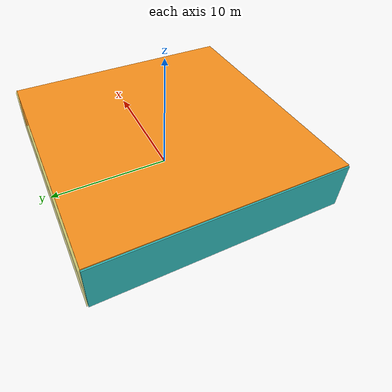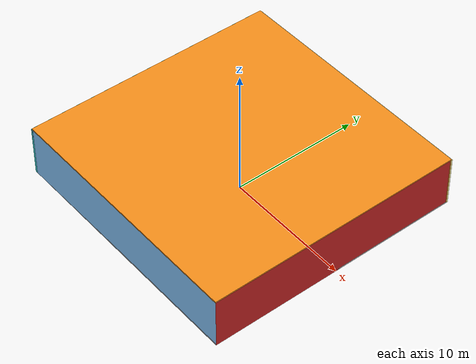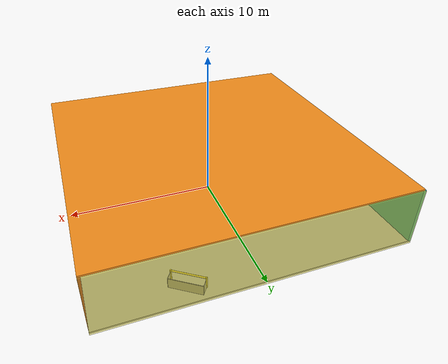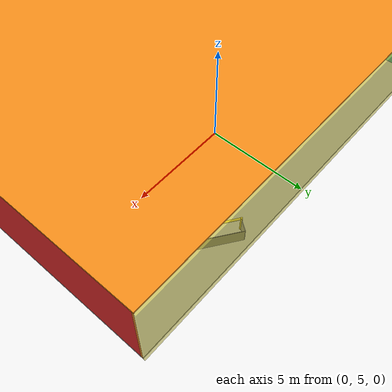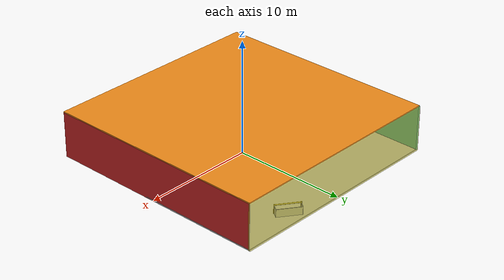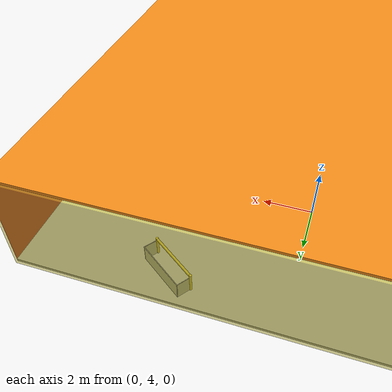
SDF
<sdf version="1.4">
 <world name="default">
  <physics type="ode">
   <max_step_size>0.001</max_step_size>
   <real_time_factor>1</real_time_factor>
   <real_time_update_rate>1000</real_time_update_rate>
   <gravity>0 0 -9.8</gravity>
  </physics>
  <scene><ambient>0.4 0.4 0.4 1</ambient><background>0.7 0.7 0.7 1</background><shadows>1</shadows></scene>
  <model name="Surrounding">
   <static>1</static>
   <link name="Ceiling">
    <collision name="Ceiling_Collision"><geometry><box><size>20 20 0.1</size></box></geometry></collision>
    <visual name="Ceiling_Visual">
     <geometry><box><size>20 20 0.1</size></box></geometry>
     <material>
      <script><uri>file://media/materials/scripts/gazebo.material</uri><name>Gazebo/Orange</name></script>
     </material>
    </visual>
    <pose>0 0 4.05 0 0 0</pose>
   </link>
   <link name="Wall_South">
    <collision name="Wall_South_Collision">
     <geometry><box><size>20 0 4</size></box></geometry>
     <pose>0 0 2 0 -0 0</pose>
    </collision>
    <visual name="Wall_South_Visual">
     <pose>0 0 2 0 -0 0</pose>
     <geometry><box><size>20 0 4</size></box></geometry>
     <material>
      <script><uri>file://media/materials/scripts/gazebo.material</uri><name>Gazebo/SkyBlue</name></script>
     </material>
    </visual>
    <velocity_decay><linear>0</linear><angular>0</angular></velocity_decay>
    <pose>0 -10 0 0 -0 0</pose>
   </link>
   <link name="Wall_East">
    <collision name="Wall_21_Collision">
     <geometry><box><size>20 0 4</size></box></geometry>
     <pose>0 0 2 0 -0 0</pose>
    </collision>
    <visual name="Wall_21_Visual">
     <pose>0 0 2 0 -0 0</pose>
     <geometry><box><size>20 0 4</size></box></geometry>
     <material>
      <script><uri>file://media/materials/scripts/gazebo.material</uri><name>Gazebo/Red</name></script>
     </material>
    </visual>
    <velocity_decay><linear>0</linear><angular>0</angular></velocity_decay>
    <pose>10 0 0 0 -0 1.5708</pose>
   </link>
   <link name="Wall_North">
    <collision name="Wall_22_Collision">
     <geometry><box><size>20 0.2 4</size></box></geometry>
     <pose>0 0 2 0 -0 0</pose>
    </collision>
    <visual name="Wall_22_Visual">
     <pose>0 0 2 0 -0 0</pose>
     <geometry><box><size>20 0.2 4</size></box></geometry>
     <material>
      <script>
       <uri>file://media/materials/scripts/gazebo.material</uri>
       <name>Gazebo/YellowTransparent</name>
      </script>
     </material>
    </visual>
    <velocity_decay><linear>0</linear><angular>0</angular></velocity_decay>
    <pose>0 10 0 0 -0 0</pose>
   </link>
   <link name="Wall_West">
    <collision name="Wall_23_Collision">
     <geometry><box><size>20 0.2 4</size></box></geometry>
     <pose>0 0 2 0 -0 0</pose>
    </collision>
    <visual name="Wall_23_Visual">
     <pose>0 0 2 0 -0 0</pose>
     <geometry><box><size>20 0.2 4</size></box></geometry>
     <material>
      <script>
       <uri>file://media/materials/scripts/gazebo.material</uri>
       <name>Gazebo/TurquoiseGlowOutline</name>
      </script>
     </material>
    </visual>
    <velocity_decay><linear>0</linear><angular>0</angular></velocity_decay>
    <pose>-10 0 0 0 0 -1.5708</pose>
   </link>
   <link name="Ground_link">
    <collision name="collision">
     <pose>0 0 .05 0 -0 0</pose>
     <geometry><box><size>20 20 0.1</size></box></geometry>
    </collision>
    <visual name="visual">
     <pose>0 0 .05 0 -0 0</pose>
     <geometry><box><size>20 20 0.1</size></box></geometry>
     <material>
      <script><uri>file://media/materials/scripts/gazebo.material</uri><name>Gazebo/PioneerBody</name></script>
     </material>
    </visual>
   </link>
   <static>1</static>
  </model>
  <spherical_coordinates>
   <surface_model>EARTH_WGS84</surface_model>
   <latitude_deg>0</latitude_deg>
   <longitude_deg>0</longitude_deg>
   <elevation>0</elevation>
   <heading_deg>0</heading_deg>
  </spherical_coordinates>
  <light name="lightball_0" type="diffuse">
   <diffuse>0.8 0.8 0.8 1</diffuse>
   <specular>0.2 0.2 0.2 1</specular>
   <attenuation>
    <range>100</range>
    <constant>0.7</constant>
    <linear>0.01</linear>
    <quadratic>0.001</quadratic>
   </attenuation>
   <direction>-0.5 0.1 -0.9</direction>
   <pose>-2.86282288299 4.42585336129 0.821366314529 0 0 0</pose>
  </light>
  <light name="lightball_1" type="diffuse">
   <diffuse>0.8 0.8 0.8 1</diffuse>
   <specular>0.2 0.2 0.2 1</specular>
   <attenuation>
    <range>100</range>
    <constant>0.7</constant>
    <linear>0.01</linear>
    <quadratic>0.001</quadratic>
   </attenuation>
   <direction>-0.5 0.1 -0.9</direction>
   <pose>6.65219254128 0.0806107977652 3.63640004937 0 0 0</pose>
  </light>
  <light name="lightball_2" type="diffuse">
   <diffuse>0.8 0.8 0.8 1</diffuse>
   <specular>0.2 0.2 0.2 1</specular>
   <attenuation>
    <range>100</range>
    <constant>0.7</constant>
    <linear>0.01</linear>
    <quadratic>0.001</quadratic>
   </attenuation>
   <direction>-0.5 0.1 -0.9</direction>
   <pose>-0.617160237397 -6.64771684997 2.01386454566 0 0 0</pose>
  </light>
  <light name="lightball_3" type="diffuse">
   <diffuse>0.8 0.8 0.8 1</diffuse>
   <specular>0.2 0.2 0.2 1</specular>
   <attenuation>
    <range>100</range>
    <constant>0.7</constant>
    <linear>0.01</linear>
    <quadratic>0.001</quadratic>
   </attenuation>
   <direction>-0.5 0.1 -0.9</direction>
   <pose>2.43152777553 9.1369872622 0.89783990722 0 0 0</pose>
  </light>
  <light name="lightball_4" type="diffuse">
   <diffuse>0.8 0.8 0.8 1</diffuse>
   <specular>0.2 0.2 0.2 1</specular>
   <attenuation>
    <range>100</range>
    <constant>0.7</constant>
    <linear>0.01</linear>
    <quadratic>0.001</quadratic>
   </attenuation>
   <direction>-0.5 0.1 -0.9</direction>
   <pose>1.9752253959 -3.47226804664 0.895888655612 0 0 0</pose>
  </light>
  <light name="lightball_5" type="diffuse">
   <diffuse>0.8 0.8 0.8 1</diffuse>
   <specular>0.2 0.2 0.2 1</specular>
   <attenuation>
    <range>100</range>
    <constant>0.7</constant>
    <linear>0.01</linear>
    <quadratic>0.001</quadratic>
   </attenuation>
   <direction>-0.5 0.1 -0.9</direction>
   <pose>-0.0582048011144 -7.6341344377 1.48532136951 0 0 0</pose>
  </light>
  <include><uri>model://table</uri><pose>-1.81377146553 1.32048652237 0 0 0 1.35287986809</pose></include>
  <include>
   <uri>model://textured_shapes</uri>
   <pose>5.16230237597 -4.88926383291 0 0 0 0.660211527866</pose>
  </include>
  <include><uri>model://cabinet</uri><pose>4.15328950899 -1.94275614939 0 0 0 1.61175214331</pose></include>
  <include>
   <uri>model://robocup_3Dsim_goal</uri>
   <pose>4.27243603871 8.64301626174 0 0 0 0.953138481672</pose>
  </include>
 </world>
</sdf>

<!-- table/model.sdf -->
<sdf version="1.5">
  <model name="table">
    <static>true</static>
    <link name="link">
      <collision name="surface">
        <pose>0 0 1.0 0 0 0</pose>
        <geometry>
          <box>
            <size>1.5 0.8 0.03</size>
          </box>
        </geometry>
        <surface>
          <friction>
            <ode>
              <mu>0.6</mu>
              <mu2>0.6</mu2>
            </ode>
          </friction>
        </surface>
      </collision>
      <visual name="visual1">
        <pose>0 0 1.0 0 0 0</pose>
        <geometry>
          <box>
            <size>1.5 0.8 0.03</size>
          </box>
        </geometry>
        <material>
          <script>
            <uri>model://media/materials/scripts/gazebo.material</uri>
            <name>Gazebo/Wood</name>
          </script>
        </material>
      </visual>
      <collision name="front_left_leg">
        <pose>0.68 0.38 0.5 0 0 0</pose>
        <geometry>
          <cylinder>
            <radius>0.02</radius>
            <length>1.0</length>
          </cylinder>
        </geometry>
      </collision>
      <visual name="front_left_leg">
        <pose>0.68 0.38 0.5 0 0 0</pose>
        <geometry>
          <cylinder>
            <radius>0.02</radius>
            <length>1.0</length>
          </cylinder>
        </geometry>
        <material>
          <script>
            <uri>model://media/materials/scripts/gazebo.material</uri>
            <name>Gazebo/Grey</name>
          </script>
        </material>
      </visual>
      <collision name="front_right_leg">
        <pose>0.68 -0.38 0.5 0 0 0</pose>
        <geometry>
          <cylinder>
            <radius>0.02</radius>
            <length>1.0</length>
          </cylinder>
        </geometry>
      </collision>
      <visual name="front_right_leg">
        <pose>0.68 -0.38 0.5 0 0 0</pose>
        <geometry>
          <cylinder>
            <radius>0.02</radius>
            <length>1.0</length>
          </cylinder>
        </geometry>
        <material>
          <script>
            <uri>model://media/materials/scripts/gazebo.material</uri>
            <name>Gazebo/Grey</name>
          </script>
        </material>
      </visual>
      <collision name="back_right_leg">
        <pose>-0.68 -0.38 0.5 0 0 0</pose>
        <geometry>
          <cylinder>
            <radius>0.02</radius>
            <length>1.0</length>
          </cylinder>
        </geometry>
      </collision>
      <visual name="back_right_leg">
        <pose>-0.68 -0.38 0.5 0 0 0</pose>
        <geometry>
          <cylinder>
            <radius>0.02</radius>
            <length>1.0</length>
          </cylinder>
        </geometry>
        <material>
          <script>
            <uri>model://media/materials/scripts/gazebo.material</uri>
            <name>Gazebo/Grey</name>
          </script>
        </material>
      </visual>
      <collision name="back_left_leg">
        <pose>-0.68 0.38 0.5 0 0 0</pose>
        <geometry>
          <cylinder>
            <radius>0.02</radius>
            <length>1.0</length>
          </cylinder>
        </geometry>
      </collision>
      <visual name="back_left_leg">
        <pose>-0.68 0.38 0.5 0 0 0</pose>
        <geometry>
          <cylinder>
            <radius>0.02</radius>
            <length>1.0</length>
          </cylinder>
        </geometry>
        <material>
          <script>
            <uri>model://media/materials/scripts/gazebo.material</uri>
            <name>Gazebo/Grey</name>
          </script>
        </material>
      </visual>
    </link>
  </model>
</sdf>

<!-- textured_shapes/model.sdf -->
<sdf version="1.6">
  <model name="textured_shapes">
    <pose>0 0 0.5 0 0 0</pose>
    <link name="box">
      <pose>0 -1.5 0 0 0 0</pose>
      <collision name="collision">
        <geometry>
          <box>
            <size>1 1 1</size>
          </box>
        </geometry>
      </collision>
      <visual name="visual">
        <geometry>
          <box>
            <size>1 1 1</size>
          </box>
        </geometry>
        <material>
          <script>
            <uri>model://../model_source/models/textured_shapes/materials/scripts</uri>
            <uri>model://../model_source/models/textured_shapes/materials/textures</uri>
            <name>TexturedShape/Squares</name>
          </script>
        </material>
      </visual>
    </link>
    <link name="sphere">
      <collision name="collision">
        <geometry>
          <sphere>
            <radius>0.5</radius>
          </sphere>
        </geometry>
      </collision>
      <visual name="visual">
        <geometry>
          <sphere>
            <radius>0.5</radius>
          </sphere>
        </geometry>
        <material>
          <script>
            <uri>model://../model_source/models/textured_shapes/materials/scripts</uri>
            <uri>model://../model_source/models/textured_shapes/materials/textures</uri>
            <name>TexturedShape/Squares</name>
          </script>
        </material>
      </visual>
    </link>
    <link name="cylinder">
      <pose>0 1.5 0 0 0 0</pose>
      <collision name="collision">
        <geometry>
          <cylinder>
            <radius>0.5</radius>
            <length>1</length>
          </cylinder>
        </geometry>
      </collision>
      <visual name="visual">
        <geometry>
          <cylinder>
            <radius>0.5</radius>
            <length>1</length>
          </cylinder>
        </geometry>
        <material>
          <script>
            <uri>model://../model_source/models/textured_shapes/materials/scripts</uri>
            <uri>model://../model_source/models/textured_shapes/materials/textures</uri>
            <name>TexturedShape/Squares</name>
          </script>
        </material>
      </visual>
    </link>
  </model>
</sdf>

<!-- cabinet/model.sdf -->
<sdf version="1.5">
  <model name="cabinet">
    <static>true</static>
    <link name="cabinet_bottom_plate">
      <inertial>
        <pose>0 0 -1 0 0 0</pose>
        <inertia>
          <ixx>2.050000</ixx>
          <ixy>0</ixy>
          <ixz>0</ixz>
          <iyy>2.050000</iyy>
          <iyz>0</iyz>
          <izz>2.050000</izz>
        </inertia>
        <mass>25.000000</mass>
      </inertial>
      <collision name="cabinet_bottom_plate_geom">
        <pose>0 0 0.010000 0 0 0</pose>
        <geometry>
          <box>
            <size>0.450000 0.450000 0.020000</size>
          </box>
        </geometry>
      </collision>
      <visual name="cabinet_bottom_plate_geom_visual">
        <pose>0 0 0.010000 0 0 0</pose>
        <geometry>
          <box>
            <size>0.450000 0.450000 0.020000</size>
          </box>
        </geometry>
        <material>
          <script>
            <uri>model://media/materials/scripts/gazebo.material</uri>
            <name>Gazebo/Wood</name>
          </script>
        </material>
      </visual>
      <collision name="cabinet_bottom_plate_geom_cabinet_back_plate">
        <pose>0.235000 0 0.510000 0 0 0</pose>
        <geometry>
          <box>
            <size>0.020000 0.450000 1.020000</size>
          </box>
        </geometry>
      </collision>
      <visual name="cabinet_bottom_plate_geom_cabinet_back_plate_visual">
        <pose>0.235000 0 0.510000 0 0 0</pose>
        <geometry>
          <box>
            <size>0.020000 0.450000 1.020000</size>
          </box>
        </geometry>
        <material>
          <script>
            <uri>model://media/materials/scripts/gazebo.material</uri>
            <name>Gazebo/Wood</name>
          </script>
        </material>
      </visual>
      <collision name="cabinet_bottom_plate_geom_cabinet_left_plate">
        <pose>0 0.235000 0.510000 0 0 0</pose>
        <geometry>
          <box>
            <size>0.450000 0.020000 1.020000</size>
          </box>
        </geometry>
      </collision>
      <visual name="cabinet_bottom_plate_geom_cabinet_left_plate_visual">
        <pose>0 0.235000 0.510000 0 0 0</pose>
        <geometry>
          <box>
            <size>0.450000 0.020000 1.020000</size>
          </box>
        </geometry>
        <material>
          <script>
            <uri>model://media/materials/scripts/gazebo.material</uri>
            <name>Gazebo/Wood</name>
          </script>
        </material>
      </visual>
      <collision name="cabinet_bottom_plate_geom_cabinet_middle_plate">
        <pose>0 0 0.510000 0 0 0</pose>
        <geometry>
          <box>
            <size>0.450000 0.450000 0.020000</size>
          </box>
        </geometry>
      </collision>
      <visual name="cabinet_bottom_plate_geom_cabinet_middle_plate_visual">
        <pose>0 0 0.510000 0 0 0</pose>
        <geometry>
          <box>
            <size>0.450000 0.450000 0.020000</size>
          </box>
        </geometry>
        <material>
          <script>
            <uri>model://media/materials/scripts/gazebo.material</uri>
            <name>Gazebo/Wood</name>
          </script>
        </material>
      </visual>
      <collision name="cabinet_bottom_plate_geom_cabinet_right_plate">
        <pose>0 -0.235000 0.510000 0 0 0</pose>
        <geometry>
          <box>
            <size>0.450000 0.020000 1.020000</size>
          </box>
        </geometry>
      </collision>
      <visual name="cabinet_bottom_plate_geom_cabinet_right_plate_visual">
        <pose>0 -0.235000 0.510000 0 0 0</pose>
        <geometry>
          <box>
            <size>0.450000 0.020000 1.020000</size>
          </box>
        </geometry>
        <material>
          <script>
            <uri>model://media/materials/scripts/gazebo.material</uri>
            <name>Gazebo/Wood</name>
          </script>
        </material>
      </visual>
      <collision name="cabinet_bottom_plate_geom_cabinet_top_plate">
        <pose>0 0 1.010000 0 0 0</pose>
        <geometry>
          <box>
            <size>0.450000 0.450000 0.020000</size>
          </box>
        </geometry>
      </collision>
      <visual name="cabinet_bottom_plate_geom_cabinet_top_plate_visual">
        <pose>0 0 1.010000 0 0 0</pose>
        <geometry>
          <box>
            <size>0.450000 0.450000 0.020000</size>
          </box>
        </geometry>
        <material>
          <script>
            <uri>model://media/materials/scripts/gazebo.material</uri>
            <name>Gazebo/Wood</name>
          </script>
        </material>
      </visual>
    </link>
  </model>
</sdf>

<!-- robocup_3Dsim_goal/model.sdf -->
<sdf version="1.5">
  <model name="robocup_3d_goal">
    <static>true</static>
    <link name="left_post">
      <pose>0 1.05 0.45 0 0 0</pose>
      <collision name="collision">
        <geometry>
          <cylinder>
            <radius>0.05</radius>
            <length>0.9</length>
          </cylinder>
        </geometry>
      </collision>
      <visual name="visual">
        <geometry>
          <cylinder>
            <radius>0.05</radius>
            <length>0.9</length>
          </cylinder>
        </geometry>
        <material>
          <script>
            <uri>file://media/materials/scripts/gazebo.material</uri>
            <name>Gazebo/ZincYellow</name>
          </script>
        </material>
      </visual>
    </link>
    <link name="left_support_horiz_lower">
      <pose>0.30 1.05 0.01 0 0 0</pose>
      <collision name="collision">
        <geometry>
          <box>
            <size>0.50 0.02 0.02</size>
          </box>
        </geometry>
      </collision>
      <visual name="visual">
        <geometry>
          <box>
            <size>0.50 0.02 0.02</size>
          </box>
        </geometry>
        <material>
          <script>
            <uri>file://media/materials/scripts/gazebo.material</uri>
            <name>Gazebo/White</name>
          </script>
        </material>
      </visual>
    </link>
    <link name="left_support_horiz_upper">
      <pose>0.30 1.05 0.79 0 0 0</pose>
      <collision name="collision">
        <geometry>
          <box>
            <size>0.50 0.02 0.02</size>
          </box>
        </geometry>
      </collision>
      <visual name="visual">
        <geometry>
          <box>
            <size>0.50 0.02 0.02</size>
          </box>
        </geometry>
        <material>
          <script>
            <uri>file://media/materials/scripts/gazebo.material</uri>
            <name>Gazebo/White</name>
          </script>
        </material>
      </visual>
    </link>
    <link name="left_support_vertical">
      <pose>0.56 1.05 0.4 0 1.5708 0</pose>
      <collision name="collision">
        <geometry>
          <box>
            <size>0.80 0.02 0.02</size>
          </box>
        </geometry>
      </collision>
      <visual name="visual">
        <geometry>
          <box>
            <size>0.80 0.02 0.02</size>
          </box>
        </geometry>
        <material>
          <script>
            <uri>file://media/materials/scripts/gazebo.material</uri>
            <name>Gazebo/White</name>
          </script>
        </material>
      </visual>
    </link>
    <link name="right_support_horiz_lower">
      <pose>0.30 -1.05 0.01 0 0 0</pose>
      <collision name="collision">
        <geometry>
          <box>
            <size>0.50 0.02 0.02</size>
          </box>
        </geometry>
      </collision>
      <visual name="visual">
        <geometry>
          <box>
            <size>0.50 0.02 0.02</size>
          </box>
        </geometry>
        <material>
          <script>
            <uri>file://media/materials/scripts/gazebo.material</uri>
            <name>Gazebo/White</name>
          </script>
        </material>
      </visual>
    </link>
    <link name="right_support_horiz_upper">
      <pose>0.30 -1.05 0.79 0 0 0</pose>
      <collision name="collision">
        <geometry>
          <box>
            <size>0.50 0.02 0.02</size>
          </box>
        </geometry>
      </collision>
      <visual name="visual">
        <geometry>
          <box>
            <size>0.50 0.02 0.02</size>
          </box>
        </geometry>
        <material>
          <script>
            <uri>file://media/materials/scripts/gazebo.material</uri>
            <name>Gazebo/White</name>
          </script>
        </material>
      </visual>
    </link>
    <link name="right_support_vertical">
      <pose>0.56 -1.05 0.4 0 1.5708 0</pose>
      <collision name="collision">
        <geometry>
          <box>
            <size>0.80 0.02 0.02</size>
          </box>
        </geometry>
      </collision>
      <visual name="visual">
        <geometry>
          <box>
            <size>0.80 0.02 0.02</size>
          </box>
        </geometry>
        <material>
          <script>
            <uri>file://media/materials/scripts/gazebo.material</uri>
            <name>Gazebo/White</name>
          </script>
        </material>
      </visual>
    </link>
    <link name="center_support_horiz_lower">
      <pose>0.56 0 0.01 0 1.5708 0</pose>
      <collision name="collision">
        <geometry>
          <box>
            <size>0.02 2.08 0.02</size>
          </box>
        </geometry>
      </collision>
      <visual name="visual">
        <geometry>
          <box>
            <size>0.02 2.08 0.02</size>
          </box>
        </geometry>
        <material>
          <script>
            <uri>file://media/materials/scripts/gazebo.material</uri>
            <name>Gazebo/White</name>
          </script>
        </material>
      </visual>
    </link>
    <link name="center_support_horiz_upper">
      <pose>0.56 0 0.79 0 1.5708 0</pose>
      <collision name="collision">
        <geometry>
          <box>
            <size>0.02 2.08 0.02</size>
          </box>
        </geometry>
      </collision>
      <visual name="visual">
        <geometry>
          <box>
            <size>0.02 2.08 0.02</size>
          </box>
        </geometry>
        <material>
          <script>
            <uri>file://media/materials/scripts/gazebo.material</uri>
            <name>Gazebo/White</name>
          </script>
        </material>
      </visual>
    </link>
    <link name="right_post">
      <pose>0 -1.05 0.45 0 0 0</pose>
      <collision name="collision">
        <geometry>
          <cylinder>
            <radius>0.05</radius>
            <length>0.9</length>
          </cylinder>
        </geometry>
      </collision>
      <visual name="visual">
        <geometry>
          <cylinder>
            <radius>0.05</radius>
            <length>0.9</length>
          </cylinder>
        </geometry>
        <material>
          <script>
            <uri>file://media/materials/scripts/gazebo.material</uri>
            <name>Gazebo/ZincYellow</name>
          </script>
        </material>
      </visual>
    </link>
    <link name="crossbar">
      <pose>0 0 0.85 1.57 1.57 0</pose>
      <collision name="collision">
        <geometry>
          <cylinder>
            <radius>0.05</radius>
            <length>2.0</length>
          </cylinder>
        </geometry>
      </collision>
      <visual name="visual">
        <geometry>
          <cylinder>
            <radius>0.05</radius>
            <length>2.0</length>
          </cylinder>
        </geometry>
        <material>
          <script>
            <uri>file://media/materials/scripts/gazebo.material</uri>
            <name>Gazebo/ZincYellow</name>
          </script>
        </material>
      </visual>
    </link>
    <link name="center_net">
      <pose>0.56 0 0.40 0 0 0</pose>
      <collision name="collision">
        <geometry>
          <box>
            <size>0.01 2.1 0.80</size>
          </box>
        </geometry>
      </collision>
      <visual name="visual">
        <geometry>
          <box>
            <size>0.01 2.1 0.80</size>
          </box>
        </geometry>
        <material>
          <script>
            <uri>model://../model_source/models/robocup09_spl_field/materials/scripts/</uri>
            <uri>model://../model_source/models/robocup09_spl_field/materials/textures/</uri>
            <name>RoboCup/Net</name>
          </script>
        </material>
      </visual>
    </link>
    <link name="left_net">
      <pose>0.30 1.05 0.40 0 0 0</pose>
      <collision name="collision">
        <geometry>
          <box>
            <size>0.50 0.01 0.76</size>
          </box>
        </geometry>
      </collision>
      <visual name="visual">
        <geometry>
          <box>
            <size>0.50 0.01 0.76</size>
          </box>
        </geometry>
        <material>
          <script>
            <uri>model://../model_source/models/robocup09_spl_field/materials/scripts/</uri>
            <uri>model://../model_source/models/robocup09_spl_field/materials/textures/</uri>
            <name>RoboCup/Net</name>
          </script>
        </material>
      </visual>
    </link>
    <link name="right_net">
      <pose>0.30 -1.05 0.40 0 0 0</pose>
      <collision name="collision">
        <geometry>
          <box>
            <size>0.50 0.01 0.76</size>
          </box>
        </geometry>
      </collision>
      <visual name="visual">
        <geometry>
          <box>
            <size>0.50 0.01 0.76</size>
          </box>
        </geometry>
        <material>
          <script>
            <uri>model://../model_source/models/robocup09_spl_field/materials/scripts/</uri>
            <uri>model://../model_source/models/robocup09_spl_field/materials/textures/</uri>
            <name>RoboCup/Net</name>
          </script>
        </material>
      </visual>
    </link>
  </model>
</sdf>
